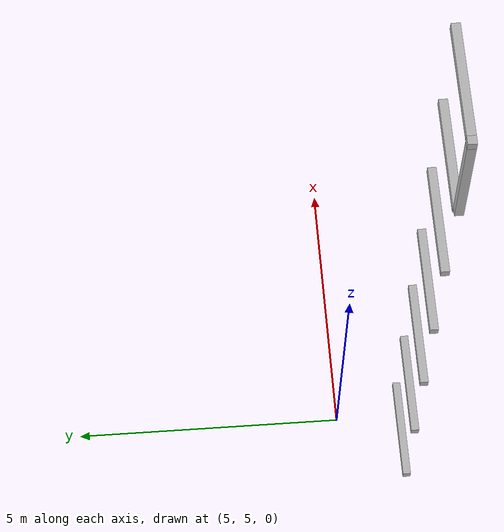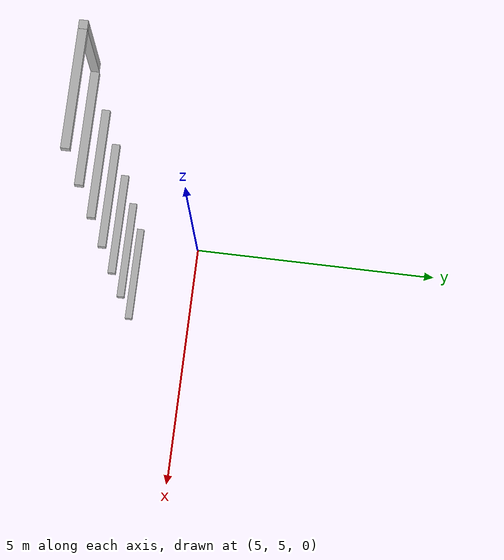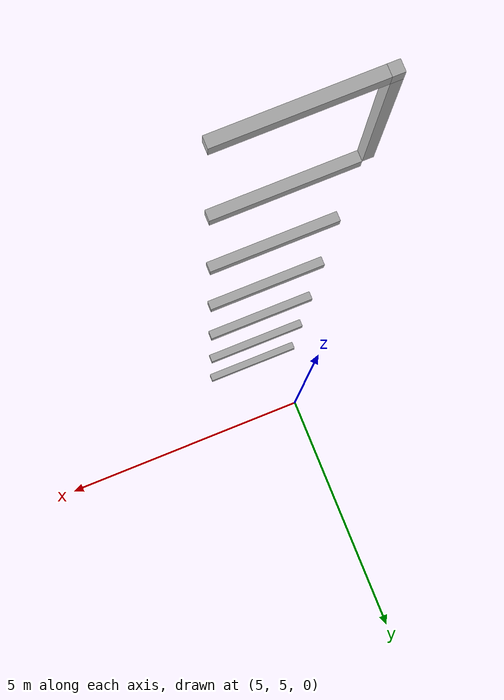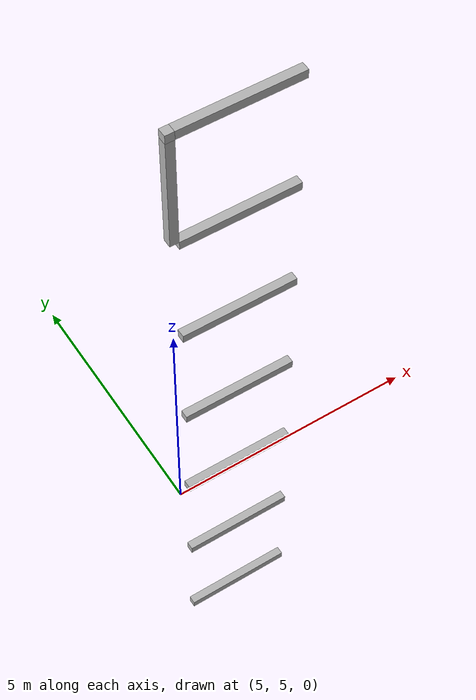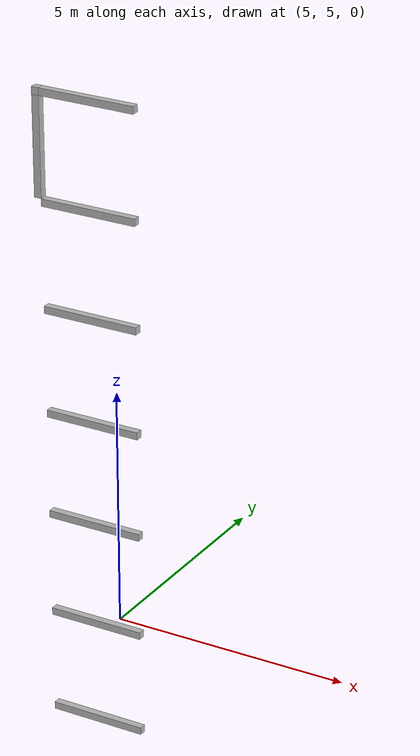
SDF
<sdf version="1.7">
 <world name="default">
  <model name="orthogonal_747_2.000.15_TS">
   <static>1</static>
   <link name="x_link_0_4_5">
    <inertial>
     <mass>1</mass>
     <inertia>
      <ixx>0.166667</ixx>
      <ixy>0</ixy>
      <ixz>0</ixz>
      <iyy>0.166667</iyy>
      <iyz>0</iyz>
      <izz>0.166667</izz>
     </inertia>
    </inertial>
    <pose>11.825 8.6 1.075 0 -0 0</pose>
    <visual name="visual_0">
     <laser_retro>715</laser_retro>
     <geometry><box><size>2 1e-06 0.15</size></box></geometry>
     <material>
      <script><name>Gazebo/Grey</name><uri>file://media/materials/scripts/gazebo.material</uri></script>
      <shader type="pixel"><normal_map>__default__</normal_map></shader>
      <ambient>0.678 0.498 0.659 1</ambient>
      <diffuse>0.7 0.7 0.7 1</diffuse>
      <specular>0.01 0.01 0.01 1</specular>
      <emissive>0 0 0 1</emissive>
     </material>
     <pose>0 -0.075 0 0 -0 0</pose>
     <transparency>1</transparency>
    </visual>
    <visual name="visual_1">
     <laser_retro>716</laser_retro>
     <geometry><box><size>2 1e-06 0.15</size></box></geometry>
     <material>
      <script><name>Gazebo/Grey</name><uri>file://media/materials/scripts/gazebo.material</uri></script>
      <shader type="pixel"><normal_map>__default__</normal_map></shader>
      <ambient>0.447 0.624 0.812 1</ambient>
      <diffuse>0.7 0.7 0.7 1</diffuse>
      <specular>0.01 0.01 0.01 1</specular>
      <emissive>0 0 0 1</emissive>
     </material>
     <pose>0 0.075 0 0 -0 0</pose>
     <transparency>1</transparency>
    </visual>
    <visual name="visual_2">
     <laser_retro>717</laser_retro>
     <geometry><box><size>2 0.15 1e-06</size></box></geometry>
     <material>
      <script><name>Gazebo/Grey</name><uri>file://media/materials/scripts/gazebo.material</uri></script>
      <shader type="pixel"><normal_map>__default__</normal_map></shader>
      <ambient>0.988 0.686 0.243 1</ambient>
      <diffuse>0.7 0.7 0.7 1</diffuse>
      <specular>0.01 0.01 0.01 1</specular>
      <emissive>0 0 0 1</emissive>
     </material>
     <pose>0 0 -0.075 0 -0 0</pose>
     <transparency>1</transparency>
    </visual>
    <visual name="visual_3">
     <laser_retro>718</laser_retro>
     <geometry><box><size>1e-06 0.15 0.15</size></box></geometry>
     <material>
      <script><name>Gazebo/Grey</name><uri>file://media/materials/scripts/gazebo.material</uri></script>
      <shader type="pixel"><normal_map>__default__</normal_map></shader>
      <ambient>0.988 0.914 0.31 1</ambient>
      <diffuse>0.7 0.7 0.7 1</diffuse>
      <specular>0.01 0.01 0.01 1</specular>
      <emissive>0 0 0 1</emissive>
     </material>
     <pose>1 0 0 0 -0 0</pose>
     <transparency>1</transparency>
    </visual>
    <visual name="visual_4">
     <laser_retro>719</laser_retro>
     <geometry><box><size>2 0.15 1e-06</size></box></geometry>
     <material>
      <script><name>Gazebo/Grey</name><uri>file://media/materials/scripts/gazebo.material</uri></script>
      <shader type="pixel"><normal_map>__default__</normal_map></shader>
      <ambient>0.937 0.161 0.161 1</ambient>
      <diffuse>0.7 0.7 0.7 1</diffuse>
      <specular>0.01 0.01 0.01 1</specular>
      <emissive>0 0 0 1</emissive>
     </material>
     <pose>0 0 0.075 0 -0 0</pose>
     <transparency>1</transparency>
    </visual>
    <visual name="visual_5">
     <laser_retro>720</laser_retro>
     <geometry><box><size>1e-06 0.15 0.15</size></box></geometry>
     <material>
      <script><name>Gazebo/Grey</name><uri>file://media/materials/scripts/gazebo.material</uri></script>
      <shader type="pixel"><normal_map>__default__</normal_map></shader>
      <ambient>0.541 0.886 0.204 1</ambient>
      <diffuse>0.7 0.7 0.7 1</diffuse>
      <specular>0.01 0.01 0.01 1</specular>
      <emissive>0 0 0 1</emissive>
     </material>
     <pose>-1 0 0 0 -0 0</pose>
     <transparency>1</transparency>
    </visual>
    <visual name="visual_texture">
     <geometry><box><size>1.9998 0.149985 0.149985</size></box></geometry>
     <material>
      <script>
       <uri>model://BASE_MODELS/simple_block_v2_textured/materials/scripts</uri>
       <uri>model://BASE_MODELS/simple_block_v2_textured/materials/textures</uri>
       <name>metal</name>
      </script>
     </material>
     <laser_retro>721</laser_retro>
    </visual>
    <collision name="collision">
     <geometry><box><size>2 0.15 0.15</size></box></geometry>
     <surface>
      <friction>
       <ode><mu>1</mu><mu2>1</mu2><fdir1>0 0 0</fdir1><slip1>0</slip1><slip2>0</slip2></ode>
       <torsional>
        <coefficient>1</coefficient>
        <patch_radius>0</patch_radius>
        <surface_radius>0</surface_radius>
        <use_patch_radius>1</use_patch_radius>
        <ode><slip>0</slip></ode>
       </torsional>
      </friction>
      <bounce><restitution_coefficient>0</restitution_coefficient><threshold>1e+06</threshold></bounce>
      <contact>
       <collide_without_contact>0</collide_without_contact>
       <collide_without_contact_bitmask>1</collide_without_contact_bitmask>
       <collide_bitmask>1</collide_bitmask>
       <ode>
        <soft_cfm>0</soft_cfm>
        <soft_erp>0.2</soft_erp>
        <kp>1e+13</kp>
        <kd>1</kd>
        <max_vel>0.01</max_vel>
        <min_depth>0</min_depth>
       </ode>
       <bullet>
        <split_impulse>1</split_impulse>
        <split_impulse_penetration_threshold>-0.01</split_impulse_penetration_threshold>
        <soft_cfm>0</soft_cfm>
        <soft_erp>0.2</soft_erp>
        <kp>1e+13</kp>
        <kd>1</kd>
       </bullet>
      </contact>
     </surface>
    </collision>
   </link>
   <link name="x_link_1_4_5">
    <inertial>
     <mass>1</mass>
     <inertia>
      <ixx>0.166667</ixx>
      <ixy>0</ixy>
      <ixz>0</ixz>
      <iyy>0.166667</iyy>
      <iyz>0</iyz>
      <izz>0.166667</izz>
     </inertia>
    </inertial>
    <pose>11.825 8.6 3.225 0 -0 0</pose>
    <visual name="visual_0">
     <laser_retro>1597</laser_retro>
     <geometry><box><size>2 1e-06 0.15</size></box></geometry>
     <material>
      <script><name>Gazebo/Grey</name><uri>file://media/materials/scripts/gazebo.material</uri></script>
      <shader type="pixel"><normal_map>__default__</normal_map></shader>
      <ambient>0.678 0.498 0.659 1</ambient>
      <diffuse>0.7 0.7 0.7 1</diffuse>
      <specular>0.01 0.01 0.01 1</specular>
      <emissive>0 0 0 1</emissive>
     </material>
     <pose>0 -0.075 0 0 -0 0</pose>
     <transparency>1</transparency>
    </visual>
    <visual name="visual_1">
     <laser_retro>1598</laser_retro>
     <geometry><box><size>2 1e-06 0.15</size></box></geometry>
     <material>
      <script><name>Gazebo/Grey</name><uri>file://media/materials/scripts/gazebo.material</uri></script>
      <shader type="pixel"><normal_map>__default__</normal_map></shader>
      <ambient>0.447 0.624 0.812 1</ambient>
      <diffuse>0.7 0.7 0.7 1</diffuse>
      <specular>0.01 0.01 0.01 1</specular>
      <emissive>0 0 0 1</emissive>
     </material>
     <pose>0 0.075 0 0 -0 0</pose>
     <transparency>1</transparency>
    </visual>
    <visual name="visual_2">
     <laser_retro>1599</laser_retro>
     <geometry><box><size>2 0.15 1e-06</size></box></geometry>
     <material>
      <script><name>Gazebo/Grey</name><uri>file://media/materials/scripts/gazebo.material</uri></script>
      <shader type="pixel"><normal_map>__default__</normal_map></shader>
      <ambient>0.988 0.686 0.243 1</ambient>
      <diffuse>0.7 0.7 0.7 1</diffuse>
      <specular>0.01 0.01 0.01 1</specular>
      <emissive>0 0 0 1</emissive>
     </material>
     <pose>0 0 -0.075 0 -0 0</pose>
     <transparency>1</transparency>
    </visual>
    <visual name="visual_3">
     <laser_retro>1600</laser_retro>
     <geometry><box><size>1e-06 0.15 0.15</size></box></geometry>
     <material>
      <script><name>Gazebo/Grey</name><uri>file://media/materials/scripts/gazebo.material</uri></script>
      <shader type="pixel"><normal_map>__default__</normal_map></shader>
      <ambient>0.988 0.914 0.31 1</ambient>
      <diffuse>0.7 0.7 0.7 1</diffuse>
      <specular>0.01 0.01 0.01 1</specular>
      <emissive>0 0 0 1</emissive>
     </material>
     <pose>1 0 0 0 -0 0</pose>
     <transparency>1</transparency>
    </visual>
    <visual name="visual_4">
     <laser_retro>1601</laser_retro>
     <geometry><box><size>2 0.15 1e-06</size></box></geometry>
     <material>
      <script><name>Gazebo/Grey</name><uri>file://media/materials/scripts/gazebo.material</uri></script>
      <shader type="pixel"><normal_map>__default__</normal_map></shader>
      <ambient>0.937 0.161 0.161 1</ambient>
      <diffuse>0.7 0.7 0.7 1</diffuse>
      <specular>0.01 0.01 0.01 1</specular>
      <emissive>0 0 0 1</emissive>
     </material>
     <pose>0 0 0.075 0 -0 0</pose>
     <transparency>1</transparency>
    </visual>
    <visual name="visual_5">
     <laser_retro>1602</laser_retro>
     <geometry><box><size>1e-06 0.15 0.15</size></box></geometry>
     <material>
      <script><name>Gazebo/Grey</name><uri>file://media/materials/scripts/gazebo.material</uri></script>
      <shader type="pixel"><normal_map>__default__</normal_map></shader>
      <ambient>0.541 0.886 0.204 1</ambient>
      <diffuse>0.7 0.7 0.7 1</diffuse>
      <specular>0.01 0.01 0.01 1</specular>
      <emissive>0 0 0 1</emissive>
     </material>
     <pose>-1 0 0 0 -0 0</pose>
     <transparency>1</transparency>
    </visual>
    <visual name="visual_texture">
     <geometry><box><size>1.9998 0.149985 0.149985</size></box></geometry>
     <material>
      <script>
       <uri>model://BASE_MODELS/simple_block_v2_textured/materials/scripts</uri>
       <uri>model://BASE_MODELS/simple_block_v2_textured/materials/textures</uri>
       <name>metal</name>
      </script>
     </material>
     <laser_retro>1603</laser_retro>
    </visual>
    <collision name="collision">
     <geometry><box><size>2 0.15 0.15</size></box></geometry>
     <surface>
      <friction>
       <ode><mu>1</mu><mu2>1</mu2><fdir1>0 0 0</fdir1><slip1>0</slip1><slip2>0</slip2></ode>
       <torsional>
        <coefficient>1</coefficient>
        <patch_radius>0</patch_radius>
        <surface_radius>0</surface_radius>
        <use_patch_radius>1</use_patch_radius>
        <ode><slip>0</slip></ode>
       </torsional>
      </friction>
      <bounce><restitution_coefficient>0</restitution_coefficient><threshold>1e+06</threshold></bounce>
      <contact>
       <collide_without_contact>0</collide_without_contact>
       <collide_without_contact_bitmask>1</collide_without_contact_bitmask>
       <collide_bitmask>1</collide_bitmask>
       <ode>
        <soft_cfm>0</soft_cfm>
        <soft_erp>0.2</soft_erp>
        <kp>1e+13</kp>
        <kd>1</kd>
        <max_vel>0.01</max_vel>
        <min_depth>0</min_depth>
       </ode>
       <bullet>
        <split_impulse>1</split_impulse>
        <split_impulse_penetration_threshold>-0.01</split_impulse_penetration_threshold>
        <soft_cfm>0</soft_cfm>
        <soft_erp>0.2</soft_erp>
        <kp>1e+13</kp>
        <kd>1</kd>
       </bullet>
      </contact>
     </surface>
    </collision>
   </link>
   <link name="x_link_2_4_5">
    <inertial>
     <mass>1</mass>
     <inertia>
      <ixx>0.166667</ixx>
      <ixy>0</ixy>
      <ixz>0</ixz>
      <iyy>0.166667</iyy>
      <iyz>0</iyz>
      <izz>0.166667</izz>
     </inertia>
    </inertial>
    <pose>11.825 8.6 5.375 0 -0 0</pose>
    <visual name="visual_0">
     <laser_retro>2500</laser_retro>
     <geometry><box><size>2 1e-06 0.15</size></box></geometry>
     <material>
      <script><name>Gazebo/Grey</name><uri>file://media/materials/scripts/gazebo.material</uri></script>
      <shader type="pixel"><normal_map>__default__</normal_map></shader>
      <ambient>0.678 0.498 0.659 1</ambient>
      <diffuse>0.7 0.7 0.7 1</diffuse>
      <specular>0.01 0.01 0.01 1</specular>
      <emissive>0 0 0 1</emissive>
     </material>
     <pose>0 -0.075 0 0 -0 0</pose>
     <transparency>1</transparency>
    </visual>
    <visual name="visual_1">
     <laser_retro>2501</laser_retro>
     <geometry><box><size>2 1e-06 0.15</size></box></geometry>
     <material>
      <script><name>Gazebo/Grey</name><uri>file://media/materials/scripts/gazebo.material</uri></script>
      <shader type="pixel"><normal_map>__default__</normal_map></shader>
      <ambient>0.447 0.624 0.812 1</ambient>
      <diffuse>0.7 0.7 0.7 1</diffuse>
      <specular>0.01 0.01 0.01 1</specular>
      <emissive>0 0 0 1</emissive>
     </material>
     <pose>0 0.075 0 0 -0 0</pose>
     <transparency>1</transparency>
    </visual>
    <visual name="visual_2">
     <laser_retro>2502</laser_retro>
     <geometry><box><size>2 0.15 1e-06</size></box></geometry>
     <material>
      <script><name>Gazebo/Grey</name><uri>file://media/materials/scripts/gazebo.material</uri></script>
      <shader type="pixel"><normal_map>__default__</normal_map></shader>
      <ambient>0.988 0.686 0.243 1</ambient>
      <diffuse>0.7 0.7 0.7 1</diffuse>
      <specular>0.01 0.01 0.01 1</specular>
      <emissive>0 0 0 1</emissive>
     </material>
     <pose>0 0 -0.075 0 -0 0</pose>
     <transparency>1</transparency>
    </visual>
    <visual name="visual_3">
     <laser_retro>2503</laser_retro>
     <geometry><box><size>1e-06 0.15 0.15</size></box></geometry>
     <material>
      <script><name>Gazebo/Grey</name><uri>file://media/materials/scripts/gazebo.material</uri></script>
      <shader type="pixel"><normal_map>__default__</normal_map></shader>
      <ambient>0.988 0.914 0.31 1</ambient>
      <diffuse>0.7 0.7 0.7 1</diffuse>
      <specular>0.01 0.01 0.01 1</specular>
      <emissive>0 0 0 1</emissive>
     </material>
     <pose>1 0 0 0 -0 0</pose>
     <transparency>1</transparency>
    </visual>
    <visual name="visual_4">
     <laser_retro>2504</laser_retro>
     <geometry><box><size>2 0.15 1e-06</size></box></geometry>
     <material>
      <script><name>Gazebo/Grey</name><uri>file://media/materials/scripts/gazebo.material</uri></script>
      <shader type="pixel"><normal_map>__default__</normal_map></shader>
      <ambient>0.937 0.161 0.161 1</ambient>
      <diffuse>0.7 0.7 0.7 1</diffuse>
      <specular>0.01 0.01 0.01 1</specular>
      <emissive>0 0 0 1</emissive>
     </material>
     <pose>0 0 0.075 0 -0 0</pose>
     <transparency>1</transparency>
    </visual>
    <visual name="visual_5">
     <laser_retro>2505</laser_retro>
     <geometry><box><size>1e-06 0.15 0.15</size></box></geometry>
     <material>
      <script><name>Gazebo/Grey</name><uri>file://media/materials/scripts/gazebo.material</uri></script>
      <shader type="pixel"><normal_map>__default__</normal_map></shader>
      <ambient>0.541 0.886 0.204 1</ambient>
      <diffuse>0.7 0.7 0.7 1</diffuse>
      <specular>0.01 0.01 0.01 1</specular>
      <emissive>0 0 0 1</emissive>
     </material>
     <pose>-1 0 0 0 -0 0</pose>
     <transparency>1</transparency>
    </visual>
    <visual name="visual_texture">
     <geometry><box><size>1.9998 0.149985 0.149985</size></box></geometry>
     <material>
      <script>
       <uri>model://BASE_MODELS/simple_block_v2_textured/materials/scripts</uri>
       <uri>model://BASE_MODELS/simple_block_v2_textured/materials/textures</uri>
       <name>metal</name>
      </script>
     </material>
     <laser_retro>2506</laser_retro>
    </visual>
    <collision name="collision">
     <geometry><box><size>2 0.15 0.15</size></box></geometry>
     <surface>
      <friction>
       <ode><mu>1</mu><mu2>1</mu2><fdir1>0 0 0</fdir1><slip1>0</slip1><slip2>0</slip2></ode>
       <torsional>
        <coefficient>1</coefficient>
        <patch_radius>0</patch_radius>
        <surface_radius>0</surface_radius>
        <use_patch_radius>1</use_patch_radius>
        <ode><slip>0</slip></ode>
       </torsional>
      </friction>
      <bounce><restitution_coefficient>0</restitution_coefficient><threshold>1e+06</threshold></bounce>
      <contact>
       <collide_without_contact>0</collide_without_contact>
       <collide_without_contact_bitmask>1</collide_without_contact_bitmask>
       <collide_bitmask>1</collide_bitmask>
       <ode>
        <soft_cfm>0</soft_cfm>
        <soft_erp>0.2</soft_erp>
        <kp>1e+13</kp>
        <kd>1</kd>
        <max_vel>0.01</max_vel>
        <min_depth>0</min_depth>
       </ode>
       <bullet>
        <split_impulse>1</split_impulse>
        <split_impulse_penetration_threshold>-0.01</split_impulse_penetration_threshold>
        <soft_cfm>0</soft_cfm>
        <soft_erp>0.2</soft_erp>
        <kp>1e+13</kp>
        <kd>1</kd>
       </bullet>
      </contact>
     </surface>
    </collision>
   </link>
   <link name="x_link_3_4_5">
    <inertial>
     <mass>1</mass>
     <inertia>
      <ixx>0.166667</ixx>
      <ixy>0</ixy>
      <ixz>0</ixz>
      <iyy>0.166667</iyy>
      <iyz>0</iyz>
      <izz>0.166667</izz>
     </inertia>
    </inertial>
    <pose>11.825 8.6 7.525 0 -0 0</pose>
    <visual name="visual_0">
     <laser_retro>3403</laser_retro>
     <geometry><box><size>2 1e-06 0.15</size></box></geometry>
     <material>
      <script><name>Gazebo/Grey</name><uri>file://media/materials/scripts/gazebo.material</uri></script>
      <shader type="pixel"><normal_map>__default__</normal_map></shader>
      <ambient>0.678 0.498 0.659 1</ambient>
      <diffuse>0.7 0.7 0.7 1</diffuse>
      <specular>0.01 0.01 0.01 1</specular>
      <emissive>0 0 0 1</emissive>
     </material>
     <pose>0 -0.075 0 0 -0 0</pose>
     <transparency>1</transparency>
    </visual>
    <visual name="visual_1">
     <laser_retro>3404</laser_retro>
     <geometry><box><size>2 1e-06 0.15</size></box></geometry>
     <material>
      <script><name>Gazebo/Grey</name><uri>file://media/materials/scripts/gazebo.material</uri></script>
      <shader type="pixel"><normal_map>__default__</normal_map></shader>
      <ambient>0.447 0.624 0.812 1</ambient>
      <diffuse>0.7 0.7 0.7 1</diffuse>
      <specular>0.01 0.01 0.01 1</specular>
      <emissive>0 0 0 1</emissive>
     </material>
     <pose>0 0.075 0 0 -0 0</pose>
     <transparency>1</transparency>
    </visual>
    <visual name="visual_2">
     <laser_retro>3405</laser_retro>
     <geometry><box><size>2 0.15 1e-06</size></box></geometry>
     <material>
      <script><name>Gazebo/Grey</name><uri>file://media/materials/scripts/gazebo.material</uri></script>
      <shader type="pixel"><normal_map>__default__</normal_map></shader>
      <ambient>0.988 0.686 0.243 1</ambient>
      <diffuse>0.7 0.7 0.7 1</diffuse>
      <specular>0.01 0.01 0.01 1</specular>
      <emissive>0 0 0 1</emissive>
     </material>
     <pose>0 0 -0.075 0 -0 0</pose>
     <transparency>1</transparency>
    </visual>
    <visual name="visual_3">
     <laser_retro>3406</laser_retro>
     <geometry><box><size>1e-06 0.15 0.15</size></box></geometry>
     <material>
      <script><name>Gazebo/Grey</name><uri>file://media/materials/scripts/gazebo.material</uri></script>
      <shader type="pixel"><normal_map>__default__</normal_map></shader>
      <ambient>0.988 0.914 0.31 1</ambient>
      <diffuse>0.7 0.7 0.7 1</diffuse>
      <specular>0.01 0.01 0.01 1</specular>
      <emissive>0 0 0 1</emissive>
     </material>
     <pose>1 0 0 0 -0 0</pose>
     <transparency>1</transparency>
    </visual>
    <visual name="visual_4">
     <laser_retro>3407</laser_retro>
     <geometry><box><size>2 0.15 1e-06</size></box></geometry>
     <material>
      <script><name>Gazebo/Grey</name><uri>file://media/materials/scripts/gazebo.material</uri></script>
      <shader type="pixel"><normal_map>__default__</normal_map></shader>
      <ambient>0.937 0.161 0.161 1</ambient>
      <diffuse>0.7 0.7 0.7 1</diffuse>
      <specular>0.01 0.01 0.01 1</specular>
      <emissive>0 0 0 1</emissive>
     </material>
     <pose>0 0 0.075 0 -0 0</pose>
     <transparency>1</transparency>
    </visual>
    <visual name="visual_5">
     <laser_retro>3408</laser_retro>
     <geometry><box><size>1e-06 0.15 0.15</size></box></geometry>
     <material>
      <script><name>Gazebo/Grey</name><uri>file://media/materials/scripts/gazebo.material</uri></script>
      <shader type="pixel"><normal_map>__default__</normal_map></shader>
      <ambient>0.541 0.886 0.204 1</ambient>
      <diffuse>0.7 0.7 0.7 1</diffuse>
      <specular>0.01 0.01 0.01 1</specular>
      <emissive>0 0 0 1</emissive>
     </material>
     <pose>-1 0 0 0 -0 0</pose>
     <transparency>1</transparency>
    </visual>
    <visual name="visual_texture">
     <geometry><box><size>1.9998 0.149985 0.149985</size></box></geometry>
     <material>
      <script>
       <uri>model://BASE_MODELS/simple_block_v2_textured/materials/scripts</uri>
       <uri>model://BASE_MODELS/simple_block_v2_textured/materials/textures</uri>
       <name>metal</name>
      </script>
     </material>
     <laser_retro>3409</laser_retro>
    </visual>
    <collision name="collision">
     <geometry><box><size>2 0.15 0.15</size></box></geometry>
     <surface>
      <friction>
       <ode><mu>1</mu><mu2>1</mu2><fdir1>0 0 0</fdir1><slip1>0</slip1><slip2>0</slip2></ode>
       <torsional>
        <coefficient>1</coefficient>
        <patch_radius>0</patch_radius>
        <surface_radius>0</surface_radius>
        <use_patch_radius>1</use_patch_radius>
        <ode><slip>0</slip></ode>
       </torsional>
      </friction>
      <bounce><restitution_coefficient>0</restitution_coefficient><threshold>1e+06</threshold></bounce>
      <contact>
       <collide_without_contact>0</collide_without_contact>
       <collide_without_contact_bitmask>1</collide_without_contact_bitmask>
       <collide_bitmask>1</collide_bitmask>
       <ode>
        <soft_cfm>0</soft_cfm>
        <soft_erp>0.2</soft_erp>
        <kp>1e+13</kp>
        <kd>1</kd>
        <max_vel>0.01</max_vel>
        <min_depth>0</min_depth>
       </ode>
       <bullet>
        <split_impulse>1</split_impulse>
        <split_impulse_penetration_threshold>-0.01</split_impulse_penetration_threshold>
        <soft_cfm>0</soft_cfm>
        <soft_erp>0.2</soft_erp>
        <kp>1e+13</kp>
        <kd>1</kd>
       </bullet>
      </contact>
     </surface>
    </collision>
   </link>
   <link name="x_link_4_4_5">
    <inertial>
     <mass>1</mass>
     <inertia>
      <ixx>0.166667</ixx>
      <ixy>0</ixy>
      <ixz>0</ixz>
      <iyy>0.166667</iyy>
      <iyz>0</iyz>
      <izz>0.166667</izz>
     </inertia>
    </inertial>
    <pose>11.825 8.6 9.675 0 -0 0</pose>
    <visual name="visual_0">
     <laser_retro>4306</laser_retro>
     <geometry><box><size>2 1e-06 0.15</size></box></geometry>
     <material>
      <script><name>Gazebo/Grey</name><uri>file://media/materials/scripts/gazebo.material</uri></script>
      <shader type="pixel"><normal_map>__default__</normal_map></shader>
      <ambient>0.678 0.498 0.659 1</ambient>
      <diffuse>0.7 0.7 0.7 1</diffuse>
      <specular>0.01 0.01 0.01 1</specular>
      <emissive>0 0 0 1</emissive>
     </material>
     <pose>0 -0.075 0 0 -0 0</pose>
     <transparency>1</transparency>
    </visual>
    <visual name="visual_1">
     <laser_retro>4307</laser_retro>
     <geometry><box><size>2 1e-06 0.15</size></box></geometry>
     <material>
      <script><name>Gazebo/Grey</name><uri>file://media/materials/scripts/gazebo.material</uri></script>
      <shader type="pixel"><normal_map>__default__</normal_map></shader>
      <ambient>0.447 0.624 0.812 1</ambient>
      <diffuse>0.7 0.7 0.7 1</diffuse>
      <specular>0.01 0.01 0.01 1</specular>
      <emissive>0 0 0 1</emissive>
     </material>
     <pose>0 0.075 0 0 -0 0</pose>
     <transparency>1</transparency>
    </visual>
    <visual name="visual_2">
     <laser_retro>4308</laser_retro>
     <geometry><box><size>2 0.15 1e-06</size></box></geometry>
     <material>
      <script><name>Gazebo/Grey</name><uri>file://media/materials/scripts/gazebo.material</uri></script>
      <shader type="pixel"><normal_map>__default__</normal_map></shader>
      <ambient>0.988 0.686 0.243 1</ambient>
      <diffuse>0.7 0.7 0.7 1</diffuse>
      <specular>0.01 0.01 0.01 1</specular>
      <emissive>0 0 0 1</emissive>
     </material>
     <pose>0 0 -0.075 0 -0 0</pose>
     <transparency>1</transparency>
    </visual>
    <visual name="visual_3">
     <laser_retro>4309</laser_retro>
     <geometry><box><size>1e-06 0.15 0.15</size></box></geometry>
     <material>
      <script><name>Gazebo/Grey</name><uri>file://media/materials/scripts/gazebo.material</uri></script>
      <shader type="pixel"><normal_map>__default__</normal_map></shader>
      <ambient>0.988 0.914 0.31 1</ambient>
      <diffuse>0.7 0.7 0.7 1</diffuse>
      <specular>0.01 0.01 0.01 1</specular>
      <emissive>0 0 0 1</emissive>
     </material>
     <pose>1 0 0 0 -0 0</pose>
     <transparency>1</transparency>
    </visual>
    <visual name="visual_4">
     <laser_retro>4310</laser_retro>
     <geometry><box><size>2 0.15 1e-06</size></box></geometry>
     <material>
      <script><name>Gazebo/Grey</name><uri>file://media/materials/scripts/gazebo.material</uri></script>
      <shader type="pixel"><normal_map>__default__</normal_map></shader>
      <ambient>0.937 0.161 0.161 1</ambient>
      <diffuse>0.7 0.7 0.7 1</diffuse>
      <specular>0.01 0.01 0.01 1</specular>
      <emissive>0 0 0 1</emissive>
     </material>
     <pose>0 0 0.075 0 -0 0</pose>
     <transparency>1</transparency>
    </visual>
    <visual name="visual_5">
     <laser_retro>4311</laser_retro>
     <geometry><box><size>1e-06 0.15 0.15</size></box></geometry>
     <material>
      <script><name>Gazebo/Grey</name><uri>file://media/materials/scripts/gazebo.material</uri></script>
      <shader type="pixel"><normal_map>__default__</normal_map></shader>
      <ambient>0.541 0.886 0.204 1</ambient>
      <diffuse>0.7 0.7 0.7 1</diffuse>
      <specular>0.01 0.01 0.01 1</specular>
      <emissive>0 0 0 1</emissive>
     </material>
     <pose>-1 0 0 0 -0 0</pose>
     <transparency>1</transparency>
    </visual>
    <visual name="visual_texture">
     <geometry><box><size>1.9998 0.149985 0.149985</size></box></geometry>
     <material>
      <script>
       <uri>model://BASE_MODELS/simple_block_v2_textured/materials/scripts</uri>
       <uri>model://BASE_MODELS/simple_block_v2_textured/materials/textures</uri>
       <name>metal</name>
      </script>
     </material>
     <laser_retro>4312</laser_retro>
    </visual>
    <collision name="collision">
     <geometry><box><size>2 0.15 0.15</size></box></geometry>
     <surface>
      <friction>
       <ode><mu>1</mu><mu2>1</mu2><fdir1>0 0 0</fdir1><slip1>0</slip1><slip2>0</slip2></ode>
       <torsional>
        <coefficient>1</coefficient>
        <patch_radius>0</patch_radius>
        <surface_radius>0</surface_radius>
        <use_patch_radius>1</use_patch_radius>
        <ode><slip>0</slip></ode>
       </torsional>
      </friction>
      <bounce><restitution_coefficient>0</restitution_coefficient><threshold>1e+06</threshold></bounce>
      <contact>
       <collide_without_contact>0</collide_without_contact>
       <collide_without_contact_bitmask>1</collide_without_contact_bitmask>
       <collide_bitmask>1</collide_bitmask>
       <ode>
        <soft_cfm>0</soft_cfm>
        <soft_erp>0.2</soft_erp>
        <kp>1e+13</kp>
        <kd>1</kd>
        <max_vel>0.01</max_vel>
        <min_depth>0</min_depth>
       </ode>
       <bullet>
        <split_impulse>1</split_impulse>
        <split_impulse_penetration_threshold>-0.01</split_impulse_penetration_threshold>
        <soft_cfm>0</soft_cfm>
        <soft_erp>0.2</soft_erp>
        <kp>1e+13</kp>
        <kd>1</kd>
       </bullet>
      </contact>
     </surface>
    </collision>
   </link>
   <link name="x_link_5_4_5">
    <inertial>
     <mass>1</mass>
     <inertia>
      <ixx>0.166667</ixx>
      <ixy>0</ixy>
      <ixz>0</ixz>
      <iyy>0.166667</iyy>
      <iyz>0</iyz>
      <izz>0.166667</izz>
     </inertia>
    </inertial>
    <pose>11.825 8.6 11.825 0 -0 0</pose>
    <visual name="visual_0">
     <laser_retro>5209</laser_retro>
     <geometry><box><size>2 1e-06 0.15</size></box></geometry>
     <material>
      <script><name>Gazebo/Grey</name><uri>file://media/materials/scripts/gazebo.material</uri></script>
      <shader type="pixel"><normal_map>__default__</normal_map></shader>
      <ambient>0.678 0.498 0.659 1</ambient>
      <diffuse>0.7 0.7 0.7 1</diffuse>
      <specular>0.01 0.01 0.01 1</specular>
      <emissive>0 0 0 1</emissive>
     </material>
     <pose>0 -0.075 0 0 -0 0</pose>
     <transparency>1</transparency>
    </visual>
    <visual name="visual_1">
     <laser_retro>5210</laser_retro>
     <geometry><box><size>2 1e-06 0.15</size></box></geometry>
     <material>
      <script><name>Gazebo/Grey</name><uri>file://media/materials/scripts/gazebo.material</uri></script>
      <shader type="pixel"><normal_map>__default__</normal_map></shader>
      <ambient>0.447 0.624 0.812 1</ambient>
      <diffuse>0.7 0.7 0.7 1</diffuse>
      <specular>0.01 0.01 0.01 1</specular>
      <emissive>0 0 0 1</emissive>
     </material>
     <pose>0 0.075 0 0 -0 0</pose>
     <transparency>1</transparency>
    </visual>
    <visual name="visual_2">
     <laser_retro>5211</laser_retro>
     <geometry><box><size>2 0.15 1e-06</size></box></geometry>
     <material>
      <script><name>Gazebo/Grey</name><uri>file://media/materials/scripts/gazebo.material</uri></script>
      <shader type="pixel"><normal_map>__default__</normal_map></shader>
      <ambient>0.988 0.686 0.243 1</ambient>
      <diffuse>0.7 0.7 0.7 1</diffuse>
      <specular>0.01 0.01 0.01 1</specular>
      <emissive>0 0 0 1</emissive>
     </material>
     <pose>0 0 -0.075 0 -0 0</pose>
     <transparency>1</transparency>
    </visual>
    <visual name="visual_3">
     <laser_retro>5212</laser_retro>
     <geometry><box><size>1e-06 0.15 0.15</size></box></geometry>
     <material>
      <script><name>Gazebo/Grey</name><uri>file://media/materials/scripts/gazebo.material</uri></script>
      <shader type="pixel"><normal_map>__default__</normal_map></shader>
      <ambient>0.988 0.914 0.31 1</ambient>
      <diffuse>0.7 0.7 0.7 1</diffuse>
      <specular>0.01 0.01 0.01 1</specular>
      <emissive>0 0 0 1</emissive>
     </material>
     <pose>1 0 0 0 -0 0</pose>
     <transparency>1</transparency>
    </visual>
    <visual name="visual_4">
     <laser_retro>5213</laser_retro>
     <geometry><box><size>2 0.15 1e-06</size></box></geometry>
     <material>
      <script><name>Gazebo/Grey</name><uri>file://media/materials/scripts/gazebo.material</uri></script>
      <shader type="pixel"><normal_map>__default__</normal_map></shader>
      <ambient>0.937 0.161 0.161 1</ambient>
      <diffuse>0.7 0.7 0.7 1</diffuse>
      <specular>0.01 0.01 0.01 1</specular>
      <emissive>0 0 0 1</emissive>
     </material>
     <pose>0 0 0.075 0 -0 0</pose>
     <transparency>1</transparency>
    </visual>
    <visual name="visual_5">
     <laser_retro>5214</laser_retro>
     <geometry><box><size>1e-06 0.15 0.15</size></box></geometry>
     <material>
      <script><name>Gazebo/Grey</name><uri>file://media/materials/scripts/gazebo.material</uri></script>
      <shader type="pixel"><normal_map>__default__</normal_map></shader>
      <ambient>0.541 0.886 0.204 1</ambient>
      <diffuse>0.7 0.7 0.7 1</diffuse>
      <specular>0.01 0.01 0.01 1</specular>
      <emissive>0 0 0 1</emissive>
     </material>
     <pose>-1 0 0 0 -0 0</pose>
     <transparency>1</transparency>
    </visual>
    <visual name="visual_texture">
     <geometry><box><size>1.9998 0.149985 0.149985</size></box></geometry>
     <material>
      <script>
       <uri>model://BASE_MODELS/simple_block_v2_textured/materials/scripts</uri>
       <uri>model://BASE_MODELS/simple_block_v2_textured/materials/textures</uri>
       <name>metal</name>
      </script>
     </material>
     <laser_retro>5215</laser_retro>
    </visual>
    <collision name="collision">
     <geometry><box><size>2 0.15 0.15</size></box></geometry>
     <surface>
      <friction>
       <ode><mu>1</mu><mu2>1</mu2><fdir1>0 0 0</fdir1><slip1>0</slip1><slip2>0</slip2></ode>
       <torsional>
        <coefficient>1</coefficient>
        <patch_radius>0</patch_radius>
        <surface_radius>0</surface_radius>
        <use_patch_radius>1</use_patch_radius>
        <ode><slip>0</slip></ode>
       </torsional>
      </friction>
      <bounce><restitution_coefficient>0</restitution_coefficient><threshold>1e+06</threshold></bounce>
      <contact>
       <collide_without_contact>0</collide_without_contact>
       <collide_without_contact_bitmask>1</collide_without_contact_bitmask>
       <collide_bitmask>1</collide_bitmask>
       <ode>
        <soft_cfm>0</soft_cfm>
        <soft_erp>0.2</soft_erp>
        <kp>1e+13</kp>
        <kd>1</kd>
        <max_vel>0.01</max_vel>
        <min_depth>0</min_depth>
       </ode>
       <bullet>
        <split_impulse>1</split_impulse>
        <split_impulse_penetration_threshold>-0.01</split_impulse_penetration_threshold>
        <soft_cfm>0</soft_cfm>
        <soft_erp>0.2</soft_erp>
        <kp>1e+13</kp>
        <kd>1</kd>
       </bullet>
      </contact>
     </surface>
    </collision>
   </link>
   <link name="x_link_6_4_5">
    <inertial>
     <mass>1</mass>
     <inertia>
      <ixx>0.166667</ixx>
      <ixy>0</ixy>
      <ixz>0</ixz>
      <iyy>0.166667</iyy>
      <iyz>0</iyz>
      <izz>0.166667</izz>
     </inertia>
    </inertial>
    <pose>11.825 8.6 13.975 0 -0 0</pose>
    <visual name="visual_0">
     <laser_retro>6238</laser_retro>
     <geometry><box><size>2 1e-06 0.15</size></box></geometry>
     <material>
      <script><name>Gazebo/Grey</name><uri>file://media/materials/scripts/gazebo.material</uri></script>
      <shader type="pixel"><normal_map>__default__</normal_map></shader>
      <ambient>0.678 0.498 0.659 1</ambient>
      <diffuse>0.7 0.7 0.7 1</diffuse>
      <specular>0.01 0.01 0.01 1</specular>
      <emissive>0 0 0 1</emissive>
     </material>
     <pose>0 -0.075 0 0 -0 0</pose>
     <transparency>1</transparency>
    </visual>
    <visual name="visual_1">
     <laser_retro>6239</laser_retro>
     <geometry><box><size>2 1e-06 0.15</size></box></geometry>
     <material>
      <script><name>Gazebo/Grey</name><uri>file://media/materials/scripts/gazebo.material</uri></script>
      <shader type="pixel"><normal_map>__default__</normal_map></shader>
      <ambient>0.447 0.624 0.812 1</ambient>
      <diffuse>0.7 0.7 0.7 1</diffuse>
      <specular>0.01 0.01 0.01 1</specular>
      <emissive>0 0 0 1</emissive>
     </material>
     <pose>0 0.075 0 0 -0 0</pose>
     <transparency>1</transparency>
    </visual>
    <visual name="visual_2">
     <laser_retro>6240</laser_retro>
     <geometry><box><size>2 0.15 1e-06</size></box></geometry>
     <material>
      <script><name>Gazebo/Grey</name><uri>file://media/materials/scripts/gazebo.material</uri></script>
      <shader type="pixel"><normal_map>__default__</normal_map></shader>
      <ambient>0.988 0.686 0.243 1</ambient>
      <diffuse>0.7 0.7 0.7 1</diffuse>
      <specular>0.01 0.01 0.01 1</specular>
      <emissive>0 0 0 1</emissive>
     </material>
     <pose>0 0 -0.075 0 -0 0</pose>
     <transparency>1</transparency>
    </visual>
    <visual name="visual_3">
     <laser_retro>6241</laser_retro>
     <geometry><box><size>1e-06 0.15 0.15</size></box></geometry>
     <material>
      <script><name>Gazebo/Grey</name><uri>file://media/materials/scripts/gazebo.material</uri></script>
      <shader type="pixel"><normal_map>__default__</normal_map></shader>
      <ambient>0.988 0.914 0.31 1</ambient>
      <diffuse>0.7 0.7 0.7 1</diffuse>
      <specular>0.01 0.01 0.01 1</specular>
      <emissive>0 0 0 1</emissive>
     </material>
     <pose>1 0 0 0 -0 0</pose>
     <transparency>1</transparency>
    </visual>
    <visual name="visual_4">
     <laser_retro>6242</laser_retro>
     <geometry><box><size>2 0.15 1e-06</size></box></geometry>
     <material>
      <script><name>Gazebo/Grey</name><uri>file://media/materials/scripts/gazebo.material</uri></script>
      <shader type="pixel"><normal_map>__default__</normal_map></shader>
      <ambient>0.937 0.161 0.161 1</ambient>
      <diffuse>0.7 0.7 0.7 1</diffuse>
      <specular>0.01 0.01 0.01 1</specular>
      <emissive>0 0 0 1</emissive>
     </material>
     <pose>0 0 0.075 0 -0 0</pose>
     <transparency>1</transparency>
    </visual>
    <visual name="visual_5">
     <laser_retro>6243</laser_retro>
     <geometry><box><size>1e-06 0.15 0.15</size></box></geometry>
     <material>
      <script><name>Gazebo/Grey</name><uri>file://media/materials/scripts/gazebo.material</uri></script>
      <shader type="pixel"><normal_map>__default__</normal_map></shader>
      <ambient>0.541 0.886 0.204 1</ambient>
      <diffuse>0.7 0.7 0.7 1</diffuse>
      <specular>0.01 0.01 0.01 1</specular>
      <emissive>0 0 0 1</emissive>
     </material>
     <pose>-1 0 0 0 -0 0</pose>
     <transparency>1</transparency>
    </visual>
    <visual name="visual_texture">
     <geometry><box><size>1.9998 0.149985 0.149985</size></box></geometry>
     <material>
      <script>
       <uri>model://BASE_MODELS/simple_block_v2_textured/materials/scripts</uri>
       <uri>model://BASE_MODELS/simple_block_v2_textured/materials/textures</uri>
       <name>metal</name>
      </script>
     </material>
     <laser_retro>6244</laser_retro>
    </visual>
    <collision name="collision">
     <geometry><box><size>2 0.15 0.15</size></box></geometry>
     <surface>
      <friction>
       <ode><mu>1</mu><mu2>1</mu2><fdir1>0 0 0</fdir1><slip1>0</slip1><slip2>0</slip2></ode>
       <torsional>
        <coefficient>1</coefficient>
        <patch_radius>0</patch_radius>
        <surface_radius>0</surface_radius>
        <use_patch_radius>1</use_patch_radius>
        <ode><slip>0</slip></ode>
       </torsional>
      </friction>
      <bounce><restitution_coefficient>0</restitution_coefficient><threshold>1e+06</threshold></bounce>
      <contact>
       <collide_without_contact>0</collide_without_contact>
       <collide_without_contact_bitmask>1</collide_without_contact_bitmask>
       <collide_bitmask>1</collide_bitmask>
       <ode>
        <soft_cfm>0</soft_cfm>
        <soft_erp>0.2</soft_erp>
        <kp>1e+13</kp>
        <kd>1</kd>
        <max_vel>0.01</max_vel>
        <min_depth>0</min_depth>
       </ode>
       <bullet>
        <split_impulse>1</split_impulse>
        <split_impulse_penetration_threshold>-0.01</split_impulse_penetration_threshold>
        <soft_cfm>0</soft_cfm>
        <soft_erp>0.2</soft_erp>
        <kp>1e+13</kp>
        <kd>1</kd>
       </bullet>
      </contact>
     </surface>
    </collision>
   </link>
   <link name="u_link_6_4_5">
    <inertial>
     <mass>1</mass>
     <inertia>
      <ixx>0.166667</ixx>
      <ixy>0</ixy>
      <ixz>0</ixz>
      <iyy>0.166667</iyy>
      <iyz>0</iyz>
      <izz>0.166667</izz>
     </inertia>
    </inertial>
    <pose>10.75 8.6 13.975 0 -0 0</pose>
    <visual name="visual_0">
     <laser_retro>6245</laser_retro>
     <geometry><box><size>0.15 1e-06 0.15</size></box></geometry>
     <material>
      <script><name>Gazebo/Grey</name><uri>file://media/materials/scripts/gazebo.material</uri></script>
      <shader type="pixel"><normal_map>__default__</normal_map></shader>
      <ambient>0.678 0.498 0.659 1</ambient>
      <diffuse>0.7 0.7 0.7 1</diffuse>
      <specular>0.01 0.01 0.01 1</specular>
      <emissive>0 0 0 1</emissive>
     </material>
     <pose>0 -0.075 0 0 -0 0</pose>
     <transparency>1</transparency>
    </visual>
    <visual name="visual_1">
     <laser_retro>6246</laser_retro>
     <geometry><box><size>0.15 1e-06 0.15</size></box></geometry>
     <material>
      <script><name>Gazebo/Grey</name><uri>file://media/materials/scripts/gazebo.material</uri></script>
      <shader type="pixel"><normal_map>__default__</normal_map></shader>
      <ambient>0.447 0.624 0.812 1</ambient>
      <diffuse>0.7 0.7 0.7 1</diffuse>
      <specular>0.01 0.01 0.01 1</specular>
      <emissive>0 0 0 1</emissive>
     </material>
     <pose>0 0.075 0 0 -0 0</pose>
     <transparency>1</transparency>
    </visual>
    <visual name="visual_2">
     <laser_retro>6247</laser_retro>
     <geometry><box><size>0.15 0.15 1e-06</size></box></geometry>
     <material>
      <script><name>Gazebo/Grey</name><uri>file://media/materials/scripts/gazebo.material</uri></script>
      <shader type="pixel"><normal_map>__default__</normal_map></shader>
      <ambient>0.988 0.686 0.243 1</ambient>
      <diffuse>0.7 0.7 0.7 1</diffuse>
      <specular>0.01 0.01 0.01 1</specular>
      <emissive>0 0 0 1</emissive>
     </material>
     <pose>0 0 -0.075 0 -0 0</pose>
     <transparency>1</transparency>
    </visual>
    <visual name="visual_3">
     <laser_retro>6248</laser_retro>
     <geometry><box><size>1e-06 0.15 0.15</size></box></geometry>
     <material>
      <script><name>Gazebo/Grey</name><uri>file://media/materials/scripts/gazebo.material</uri></script>
      <shader type="pixel"><normal_map>__default__</normal_map></shader>
      <ambient>0.988 0.914 0.31 1</ambient>
      <diffuse>0.7 0.7 0.7 1</diffuse>
      <specular>0.01 0.01 0.01 1</specular>
      <emissive>0 0 0 1</emissive>
     </material>
     <pose>0.075 0 0 0 -0 0</pose>
     <transparency>1</transparency>
    </visual>
    <visual name="visual_4">
     <laser_retro>6249</laser_retro>
     <geometry><box><size>0.15 0.15 1e-06</size></box></geometry>
     <material>
      <script><name>Gazebo/Grey</name><uri>file://media/materials/scripts/gazebo.material</uri></script>
      <shader type="pixel"><normal_map>__default__</normal_map></shader>
      <ambient>0.937 0.161 0.161 1</ambient>
      <diffuse>0.7 0.7 0.7 1</diffuse>
      <specular>0.01 0.01 0.01 1</specular>
      <emissive>0 0 0 1</emissive>
     </material>
     <pose>0 0 0.075 0 -0 0</pose>
     <transparency>1</transparency>
    </visual>
    <visual name="visual_5">
     <laser_retro>6250</laser_retro>
     <geometry><box><size>1e-06 0.15 0.15</size></box></geometry>
     <material>
      <script><name>Gazebo/Grey</name><uri>file://media/materials/scripts/gazebo.material</uri></script>
      <shader type="pixel"><normal_map>__default__</normal_map></shader>
      <ambient>0.541 0.886 0.204 1</ambient>
      <diffuse>0.7 0.7 0.7 1</diffuse>
      <specular>0.01 0.01 0.01 1</specular>
      <emissive>0 0 0 1</emissive>
     </material>
     <pose>-0.075 0 0 0 -0 0</pose>
     <transparency>1</transparency>
    </visual>
    <visual name="visual_texture">
     <geometry><box><size>0.149985 0.149985 0.149985</size></box></geometry>
     <material>
      <script>
       <uri>model://BASE_MODELS/simple_block_v2_textured/materials/scripts</uri>
       <uri>model://BASE_MODELS/simple_block_v2_textured/materials/textures</uri>
       <name>metal</name>
      </script>
     </material>
     <laser_retro>6251</laser_retro>
    </visual>
    <collision name="collision">
     <geometry><box><size>0.15 0.15 0.15</size></box></geometry>
     <surface>
      <friction>
       <ode><mu>1</mu><mu2>1</mu2><fdir1>0 0 0</fdir1><slip1>0</slip1><slip2>0</slip2></ode>
       <torsional>
        <coefficient>1</coefficient>
        <patch_radius>0</patch_radius>
        <surface_radius>0</surface_radius>
        <use_patch_radius>1</use_patch_radius>
        <ode><slip>0</slip></ode>
       </torsional>
      </friction>
      <bounce><restitution_coefficient>0</restitution_coefficient><threshold>1e+06</threshold></bounce>
      <contact>
       <collide_without_contact>0</collide_without_contact>
       <collide_without_contact_bitmask>1</collide_without_contact_bitmask>
       <collide_bitmask>1</collide_bitmask>
       <ode>
        <soft_cfm>0</soft_cfm>
        <soft_erp>0.2</soft_erp>
        <kp>1e+13</kp>
        <kd>1</kd>
        <max_vel>0.01</max_vel>
        <min_depth>0</min_depth>
       </ode>
       <bullet>
        <split_impulse>1</split_impulse>
        <split_impulse_penetration_threshold>-0.01</split_impulse_penetration_threshold>
        <soft_cfm>0</soft_cfm>
        <soft_erp>0.2</soft_erp>
        <kp>1e+13</kp>
        <kd>1</kd>
       </bullet>
      </contact>
     </surface>
    </collision>
   </link>
   <link name="z_link_6_4_5">
    <inertial>
     <mass>1</mass>
     <inertia>
      <ixx>0.166667</ixx>
      <ixy>0</ixy>
      <ixz>0</ixz>
      <iyy>0.166667</iyy>
      <iyz>0</iyz>
      <izz>0.166667</izz>
     </inertia>
    </inertial>
    <pose>10.75 8.6 12.9 0 -0 0</pose>
    <visual name="visual_0">
     <laser_retro>6252</laser_retro>
     <geometry><box><size>0.15 1e-06 2</size></box></geometry>
     <material>
      <script><name>Gazebo/Grey</name><uri>file://media/materials/scripts/gazebo.material</uri></script>
      <shader type="pixel"><normal_map>__default__</normal_map></shader>
      <ambient>0.678 0.498 0.659 1</ambient>
      <diffuse>0.7 0.7 0.7 1</diffuse>
      <specular>0.01 0.01 0.01 1</specular>
      <emissive>0 0 0 1</emissive>
     </material>
     <pose>0 -0.075 0 0 -0 0</pose>
     <transparency>1</transparency>
    </visual>
    <visual name="visual_1">
     <laser_retro>6253</laser_retro>
     <geometry><box><size>0.15 1e-06 2</size></box></geometry>
     <material>
      <script><name>Gazebo/Grey</name><uri>file://media/materials/scripts/gazebo.material</uri></script>
      <shader type="pixel"><normal_map>__default__</normal_map></shader>
      <ambient>0.447 0.624 0.812 1</ambient>
      <diffuse>0.7 0.7 0.7 1</diffuse>
      <specular>0.01 0.01 0.01 1</specular>
      <emissive>0 0 0 1</emissive>
     </material>
     <pose>0 0.075 0 0 -0 0</pose>
     <transparency>1</transparency>
    </visual>
    <visual name="visual_2">
     <laser_retro>6254</laser_retro>
     <geometry><box><size>0.15 0.15 1e-06</size></box></geometry>
     <material>
      <script><name>Gazebo/Grey</name><uri>file://media/materials/scripts/gazebo.material</uri></script>
      <shader type="pixel"><normal_map>__default__</normal_map></shader>
      <ambient>0.988 0.686 0.243 1</ambient>
      <diffuse>0.7 0.7 0.7 1</diffuse>
      <specular>0.01 0.01 0.01 1</specular>
      <emissive>0 0 0 1</emissive>
     </material>
     <pose>0 0 -1 0 -0 0</pose>
     <transparency>1</transparency>
    </visual>
    <visual name="visual_3">
     <laser_retro>6255</laser_retro>
     <geometry><box><size>1e-06 0.15 2</size></box></geometry>
     <material>
      <script><name>Gazebo/Grey</name><uri>file://media/materials/scripts/gazebo.material</uri></script>
      <shader type="pixel"><normal_map>__default__</normal_map></shader>
      <ambient>0.988 0.914 0.31 1</ambient>
      <diffuse>0.7 0.7 0.7 1</diffuse>
      <specular>0.01 0.01 0.01 1</specular>
      <emissive>0 0 0 1</emissive>
     </material>
     <pose>0.075 0 0 0 -0 0</pose>
     <transparency>1</transparency>
    </visual>
    <visual name="visual_4">
     <laser_retro>6256</laser_retro>
     <geometry><box><size>0.15 0.15 1e-06</size></box></geometry>
     <material>
      <script><name>Gazebo/Grey</name><uri>file://media/materials/scripts/gazebo.material</uri></script>
      <shader type="pixel"><normal_map>__default__</normal_map></shader>
      <ambient>0.937 0.161 0.161 1</ambient>
      <diffuse>0.7 0.7 0.7 1</diffuse>
      <specular>0.01 0.01 0.01 1</specular>
      <emissive>0 0 0 1</emissive>
     </material>
     <pose>0 0 1 0 -0 0</pose>
     <transparency>1</transparency>
    </visual>
    <visual name="visual_5">
     <laser_retro>6257</laser_retro>
     <geometry><box><size>1e-06 0.15 2</size></box></geometry>
     <material>
      <script><name>Gazebo/Grey</name><uri>file://media/materials/scripts/gazebo.material</uri></script>
      <shader type="pixel"><normal_map>__default__</normal_map></shader>
      <ambient>0.541 0.886 0.204 1</ambient>
      <diffuse>0.7 0.7 0.7 1</diffuse>
      <specular>0.01 0.01 0.01 1</specular>
      <emissive>0 0 0 1</emissive>
     </material>
     <pose>-0.075 0 0 0 -0 0</pose>
     <transparency>1</transparency>
    </visual>
    <visual name="visual_texture">
     <geometry><box><size>0.149985 0.149985 1.9998</size></box></geometry>
     <material>
      <script>
       <uri>model://BASE_MODELS/simple_block_v2_textured/materials/scripts</uri>
       <uri>model://BASE_MODELS/simple_block_v2_textured/materials/textures</uri>
       <name>metal</name>
      </script>
     </material>
     <laser_retro>6258</laser_retro>
    </visual>
    <collision name="collision">
     <geometry><box><size>0.15 0.15 2</size></box></geometry>
     <surface>
      <friction>
       <ode><mu>1</mu><mu2>1</mu2><fdir1>0 0 0</fdir1><slip1>0</slip1><slip2>0</slip2></ode>
       <torsional>
        <coefficient>1</coefficient>
        <patch_radius>0</patch_radius>
        <surface_radius>0</surface_radius>
        <use_patch_radius>1</use_patch_radius>
        <ode><slip>0</slip></ode>
       </torsional>
      </friction>
      <bounce><restitution_coefficient>0</restitution_coefficient><threshold>1e+06</threshold></bounce>
      <contact>
       <collide_without_contact>0</collide_without_contact>
       <collide_without_contact_bitmask>1</collide_without_contact_bitmask>
       <collide_bitmask>1</collide_bitmask>
       <ode>
        <soft_cfm>0</soft_cfm>
        <soft_erp>0.2</soft_erp>
        <kp>1e+13</kp>
        <kd>1</kd>
        <max_vel>0.01</max_vel>
        <min_depth>0</min_depth>
       </ode>
       <bullet>
        <split_impulse>1</split_impulse>
        <split_impulse_penetration_threshold>-0.01</split_impulse_penetration_threshold>
        <soft_cfm>0</soft_cfm>
        <soft_erp>0.2</soft_erp>
        <kp>1e+13</kp>
        <kd>1</kd>
       </bullet>
      </contact>
     </surface>
    </collision>
   </link>
   <pose>-6.47624 -5 -2.5 0 -0 0</pose>
  </model>
 </world>
</sdf>
